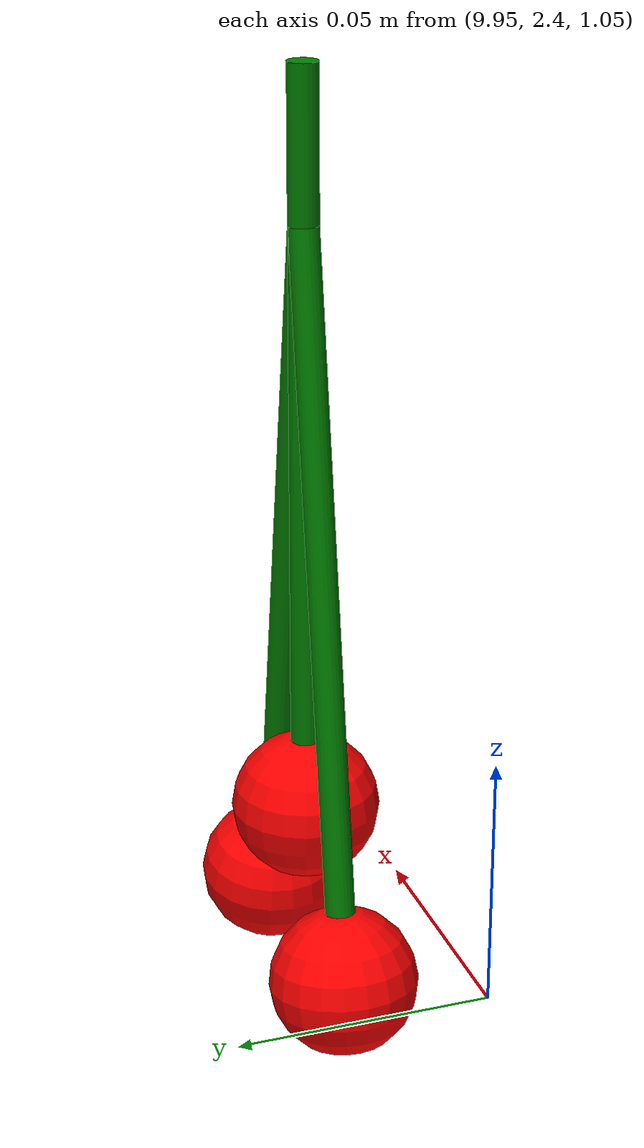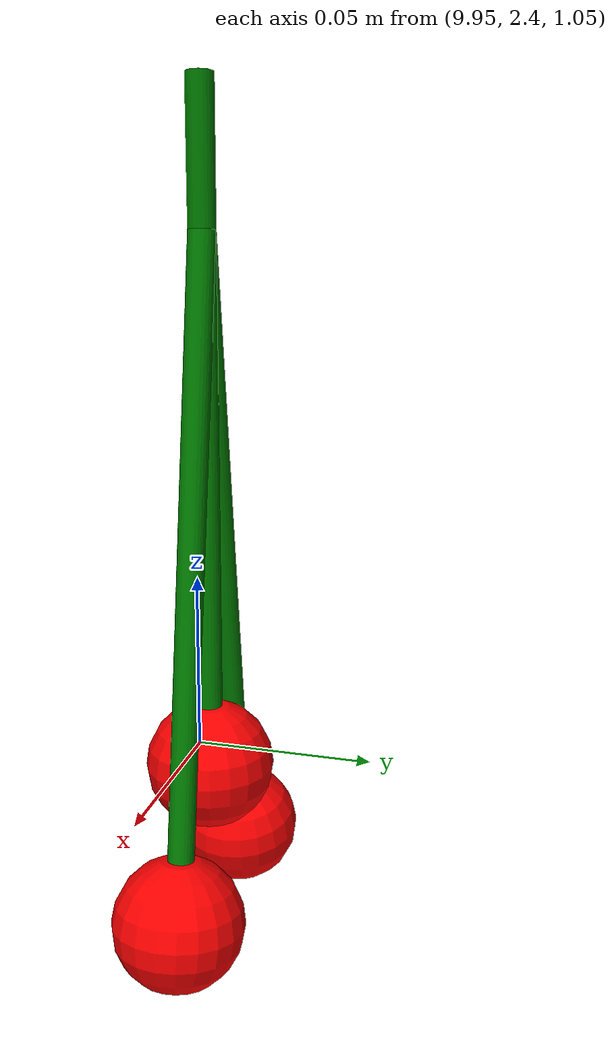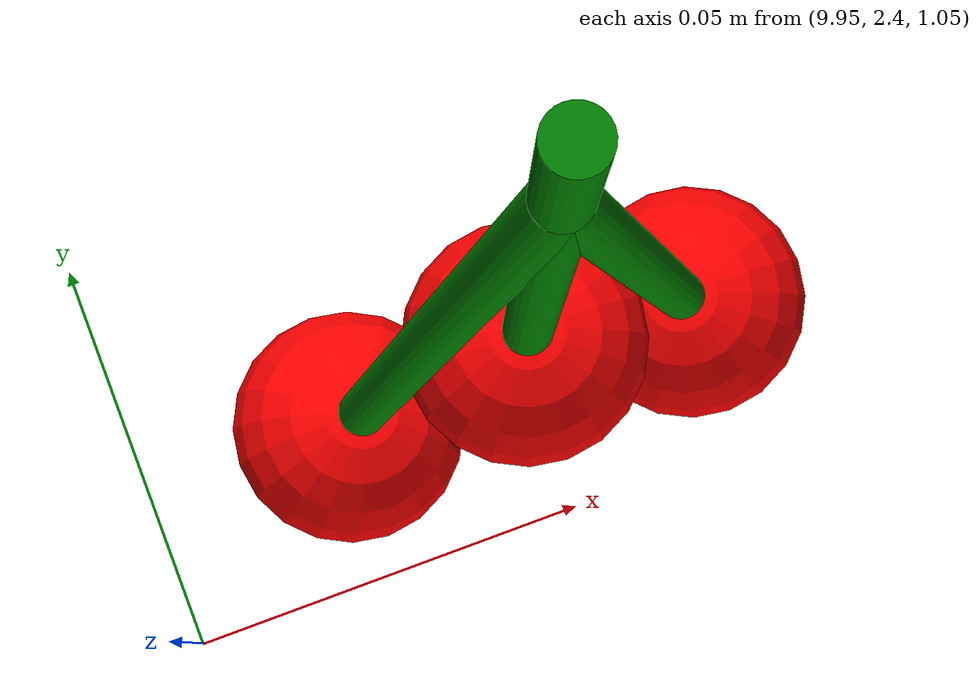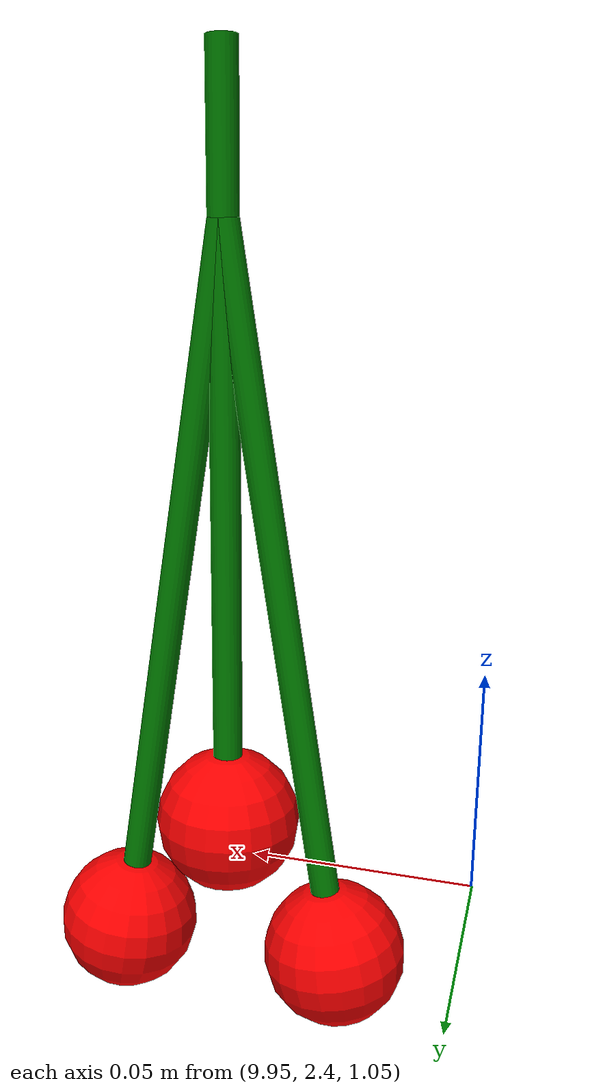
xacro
<?xml version="1.0"?>
<robot xmlns:xacro="http://www.ros.org/wiki/xacro" name="straw_cluster4">

<xacro:arg name="tf_prefix" default=""/>

<link name="world"/>

<!-- Robot1 -->
<link name="$(arg tf_prefix)/yball_stem10">
  <gravity>1</gravity>
  <inertial>
    <origin xyz="0 0 0" rpy="0 0 0"/>
    <mass value=".00001"/>
    <inertia ixx="0.0000004" ixy="0.0" ixz="0.0" iyy="0.0000004" iyz="0.0" izz="0.0000004" />
  </inertial>
  <visual><geometry><sphere radius=".00001"/></geometry></visual>
  <collision><geometry><sphere radius=".00001"/></geometry></collision>
</link>
<gazebo reference="$(arg tf_prefix)/yball_stem10">
  <material>Gazebo/Green</material>
</gazebo>

<joint name="$(arg tf_prefix)/stem10y" type="revolute" >
  <parent link="world" />
  <child link="$(arg tf_prefix)/yball_stem10" />
  <origin xyz="10 2.42 1.22" rpy="0 0 0"/>
  <axis xyz="0 1 0" />
  <dynamics damping="0.0001" friction="0.0002"/>
  <limit
      lower="-${pi}" upper="${pi}"
      effort="1" velocity="0.1" />
</joint>

<link name="$(arg tf_prefix)/xball_stem10">
  <gravity>1</gravity>
  <inertial>
    <origin xyz="0 0 0" rpy="0 0 0"/>
    <mass value=".00001"/>
    <inertia ixx="0.0000004" ixy="0.0" ixz="0.0" iyy="0.0000004" iyz="0.0" izz="0.0000004" />
  </inertial>
  <visual><geometry><sphere radius=".00001"/></geometry></visual>
  <collision><geometry><sphere radius=".00001"/></geometry></collision>
</link>
<gazebo reference="$(arg tf_prefix)/xball_stem10">
  <material>Gazebo/Green</material>
</gazebo>

<joint name="$(arg tf_prefix)/stem10x" type="revolute" >
  <parent link="$(arg tf_prefix)/yball_stem10"/>
  <child link="$(arg tf_prefix)/xball_stem10"/>
  <origin xyz="0 0 0" rpy="0 0 0"/>
  <axis xyz="1 0 0" />
  <dynamics damping="0.0001" friction="0.0002" />
  <limit
      lower="-${pi}" upper="${pi}"
      effort="1" velocity="0.1" />
</joint>

<!-- Define stem of straw10 -->
<link name="$(arg tf_prefix)/stem10">
  <gravity>1</gravity>
  <inertial>
    <origin xyz="0 0 0" rpy="0 0 0"/>
    <mass value="0.001"/>
    <inertia
      ixx="0.0000000005" ixy="0.0" ixz="0.0"
      iyy="0.0000000005" iyz="0.0"
      izz="0.0000000005"/>
  </inertial>
  <collision>
    <geometry>
		<cylinder length="0.15" radius="0.003"/>
    </geometry>
    <material name="green">
      <color rgba="0 ${128/255} 0 1"/>
    </material>
    <origin xyz="0 0 -0.075" rpy="0 0 0"/>
  </collision>
  <visual>
    <geometry>
		<cylinder length="0.15" radius="0.003"/>
    </geometry>
    <material name="green">
      <color rgba="0 ${128/255} 0 1"/>
    </material>
    <origin xyz="0 0 -0.075" rpy="0 0 0"/>
  </visual>
</link>
<gazebo reference="$(arg tf_prefix)/stem10">
  <mu1>100</mu1>
  <mu2>100</mu2>
  <selfCollide>false</selfCollide>
  <maxContacts>2</maxContacts>
  <minDepth>0</minDepth>
  <maxVel>0.01</maxVel>
  <kp  value="100000000" />
  <kd  value="100" />
  <material>Gazebo/Green</material>
</gazebo>

<joint name="$(arg tf_prefix)/xball_stem10" type="fixed">
  <parent link="$(arg tf_prefix)/xball_stem10"/>
  <child link="$(arg tf_prefix)/stem10"/>
  <origin xyz="0 0 0" rpy="0 0 0"/>
</joint>

<!-- Define straw4 -->
<link name="$(arg tf_prefix)/straw10">
  <gravity>1</gravity>
  <inertial>
    <origin xyz="0 0 0" rpy="0 0 0"/>
    <mass value="0.0002"/>
    <inertia
      ixx="0.00000018" ixy="0.0" ixz="0.0"
      iyy="0.00000018" iyz="0.0"
      izz="0.00000018"/>
  </inertial>
  <collision>
    <geometry>
    <sphere radius="0.015"/>
    </geometry>
  </collision>
  <visual>
    <geometry>
		<sphere radius="0.015"/>
    </geometry>
    <material name="Red">
      <color rgba="1 0 0 1"/>
    </material>
  </visual>
</link>
<gazebo reference="$(arg tf_prefix)/straw10">
  <mu1>100</mu1>
  <mu2>100</mu2>
  <maxContacts>2</maxContacts>
  <minDepth>0</minDepth>
  <maxVel>0.01</maxVel>
  <kp  value="100000000" />
  <kd  value="10000" />
  <material>Gazebo/Red</material>
</gazebo>

<joint name="$(arg tf_prefix)/straw10_stem10" type="fixed">
  <parent link="$(arg tf_prefix)/stem10"/>
  <child link="$(arg tf_prefix)/straw10"/>
  <origin xyz="0 0 -0.15" rpy="0 0 0"/>
</joint>

<!-- Robot2 -->
<link name="$(arg tf_prefix)/yball_stem11">
  <gravity>1</gravity>
  <inertial>
    <origin xyz="0 0 0" rpy="0 0 0"/>
    <mass value=".00001"/>
    <inertia ixx="0.0000004" ixy="0.0" ixz="0.0" iyy="0.0000004" iyz="0.0" izz="0.0000004" />
  </inertial>
  <visual><geometry><sphere radius=".00001"/></geometry></visual>
  <collision><geometry><sphere radius=".00001"/></geometry></collision>
</link>
<gazebo reference="$(arg tf_prefix)/yball_stem11">
  <material>Gazebo/Green</material>
</gazebo>

<joint name="$(arg tf_prefix)/stem11y" type="revolute" >
  <parent link="world" />
  <child link="$(arg tf_prefix)/yball_stem11" />
  <origin xyz="10 2.42 1.19" rpy="0 -${pi/20} 0"/> <!-- 0 -${pi/20} 0 -->
  <axis xyz="0 1 0" />
  <dynamics damping="0.01" friction="0.02"/>
  <limit
      lower="-${pi}" upper="${pi}"
      effort="1" velocity="0.1" />
</joint>

<link name="$(arg tf_prefix)/xball_stem11">
  <gravity>1</gravity>
  <inertial>
    <origin xyz="0 0 0" rpy="0 0 0"/>
    <mass value=".00001"/>
    <inertia ixx="0.0000004" ixy="0.0" ixz="0.0" iyy="0.0000004" iyz="0.0" izz="0.0000004" />
  </inertial>
  <visual><geometry><sphere radius=".00001"/></geometry></visual>
  <collision><geometry><sphere radius=".00001"/></geometry></collision>
</link>
<gazebo reference="$(arg tf_prefix)/xball_stem11">
  <material>Gazebo/Green</material>
</gazebo>

<joint name="$(arg tf_prefix)/stem11x" type="revolute" >
  <parent link="$(arg tf_prefix)/yball_stem11"/>
  <child link="$(arg tf_prefix)/xball_stem11"/>
  <origin xyz="0 0 0" rpy="0 0 0"/>
  <axis xyz="1 0 0" />
  <dynamics damping="0.0001" friction="0.0002" />
  <limit
      lower="-${pi}" upper="${pi}"
      effort="1" velocity="0.1" />
</joint>

<!-- Define stem of straw11 -->
<link name="$(arg tf_prefix)/stem11">
  <gravity>1</gravity>
  <inertial>
    <origin xyz="0 0 0" rpy="0 0 0"/>
    <mass value="0.0001"/>
    <inertia
      ixx="0.0000000005" ixy="0.0" ixz="0.0"
      iyy="0.0000000005" iyz="0.0"
      izz="0.0000000005"/>
  </inertial>
  <collision>
    <geometry>
		<cylinder length="0.15" radius="0.003"/>
    </geometry>
    <material name="green">
      <color rgba="0 ${128/255} 0 1"/>
    </material>
    <origin xyz="0 0 -0.075" rpy="0 0 0"/>
  </collision>
  <visual>
    <geometry>
		<cylinder length="0.15" radius="0.003"/>
    </geometry>
    <material name="green">
      <color rgba="0 ${128/255} 0 1"/>
    </material>
    <origin xyz="0 0 -0.075" rpy="0 0 0"/>
  </visual>
</link>
<gazebo reference="$(arg tf_prefix)/stem11">
  <mu1>100</mu1>
  <mu2>100</mu2>
  <maxContacts>2</maxContacts>
  <minDepth>0</minDepth>
  <maxVel>0.01</maxVel>
  <kp  value="100000000" />
  <kd  value="10000" />
  <material>Gazebo/Green</material>
</gazebo>

<joint name="$(arg tf_prefix)/xball_stem11" type="fixed">
  <parent link="$(arg tf_prefix)/xball_stem11"/>
  <child link="$(arg tf_prefix)/stem11"/>
  <origin xyz="0 0 0" rpy="0 0 0"/>
</joint>

<!-- Define straw11 -->
<link name="$(arg tf_prefix)/straw11">
  <gravity>1</gravity>
  <inertial>
    <origin xyz="0 0 0" rpy="0 0 0"/>
    <mass value="0.002"/>
    <inertia
      ixx="0.00000018" ixy="0.0" ixz="0.0"
      iyy="0.00000018" iyz="0.0"
      izz="0.00000018"/>
  </inertial>
  <collision>
    <geometry>
    <sphere radius="0.015"/>
    </geometry>
  </collision>
  <visual>
    <geometry>
		<sphere radius="0.015"/>
    </geometry>
    <material name="Red">
      <color rgba="1 0 0 1"/>
    </material>
  </visual>
</link>
<gazebo reference="$(arg tf_prefix)/straw11">
  <mu1>100</mu1>
  <mu2>100</mu2>
  <maxContacts>2</maxContacts>
  <minDepth>0</minDepth>
  <maxVel>0.01</maxVel>
  <kp  value="100000000" />
  <kd  value="10000" />
  <material>Gazebo/Red</material>
</gazebo>

<joint name="$(arg tf_prefix)/straw11_stem11" type="fixed">
  <parent link="$(arg tf_prefix)/stem11"/>
  <child link="$(arg tf_prefix)/straw11"/>
  <origin xyz="0 0 -0.15" rpy="0 0 0"/>
</joint>

<!-- Robot3 -->
<link name="$(arg tf_prefix)/yball_stem12">
  <gravity>1</gravity>
  <inertial>
    <origin xyz="0 0 0" rpy="0 0 0"/>
    <mass value=".00001"/>
    <inertia ixx="0.0000004" ixy="0.0" ixz="0.0" iyy="0.0000004" iyz="0.0" izz="0.0000004" />
  </inertial>
  <visual><geometry><sphere radius=".00001"/></geometry></visual>
  <collision><geometry><sphere radius=".00001"/></geometry></collision>
</link>
<gazebo reference="$(arg tf_prefix)/yball_stem12">
  <material>Gazebo/Green</material>
</gazebo>

<joint name="$(arg tf_prefix)/stem12y" type="revolute" >
  <parent link="world" />
  <child link="$(arg tf_prefix)/yball_stem12" />
  <origin xyz="10 2.42 1.19" rpy="0 ${pi/20} 0"/> <!-- 0 ${pi/20} 0 -->
  <axis xyz="0 1 0" />
  <dynamics damping="0.01" friction="0.02"/>
  <limit
      lower="-${pi}" upper="${pi}"
      effort="1" velocity="0.1" />
</joint>

<link name="$(arg tf_prefix)/xball_stem12">
  <gravity>1</gravity>
  <inertial>
    <origin xyz="0 0 0" rpy="0 0 0"/>
    <mass value=".00001"/>
    <inertia ixx="0.0000004" ixy="0.0" ixz="0.0" iyy="0.0000004" iyz="0.0" izz="0.0000004" />
  </inertial>
  <visual><geometry><sphere radius=".00001"/></geometry></visual>
  <collision><geometry><sphere radius=".00001"/></geometry></collision>
</link>
<gazebo reference="$(arg tf_prefix)/xball_stem12">
  <material>Gazebo/Green</material>
</gazebo>

<joint name="$(arg tf_prefix)/stem12x" type="revolute" >
  <parent link="$(arg tf_prefix)/yball_stem12"/>
  <child link="$(arg tf_prefix)/xball_stem12"/>
  <origin xyz="0 0 0" rpy="0 0 0"/>
  <axis xyz="1 0 0" />
  <dynamics damping="0.0001" friction="0.0002" />
  <limit
      lower="-${pi}" upper="${pi}"
      effort="1" velocity="0.1" />
</joint>

<!-- Define stem of straw12 -->
<link name="$(arg tf_prefix)/stem12">
  <gravity>1</gravity>
  <inertial>
    <origin xyz="0 0 0" rpy="0 0 0"/>
    <mass value="0.002"/>
    <inertia
      ixx="0.0000000005" ixy="0.0" ixz="0.0"
      iyy="0.0000000005" iyz="0.0"
      izz="0.0000000005"/>
  </inertial>
  <collision>
    <geometry>
		<cylinder length="0.15" radius="0.003"/>
    </geometry>
    <material name="green">
      <color rgba="0 ${128/255} 0 1"/>
    </material>
    <origin xyz="0 0 -0.075" rpy="0 0 0"/>
  </collision>
  <visual>
    <geometry>
		<cylinder length="0.15" radius="0.003"/>
    </geometry>
    <material name="green">
      <color rgba="0 ${128/255} 0 1"/>
    </material>
    <origin xyz="0 0 -0.075" rpy="0 0 0"/>
  </visual>
</link>
<gazebo reference="$(arg tf_prefix)/stem12">
  <mu1>100</mu1>
  <mu2>100</mu2>
  <maxContacts>2</maxContacts>
  <minDepth>0</minDepth>
  <maxVel>0.01</maxVel>
  <kp  value="100000000" />
  <kd  value="10000" />
  <material>Gazebo/Green</material>
</gazebo>

<joint name="$(arg tf_prefix)/xball_stem12" type="fixed">
  <parent link="$(arg tf_prefix)/xball_stem12"/>
  <child link="$(arg tf_prefix)/stem12"/>
  <origin xyz="0 0 0" rpy="0 0 0"/>
</joint>

<!-- Define straw12 -->
<link name="$(arg tf_prefix)/straw12">
  <gravity>1</gravity>
  <inertial>
    <origin xyz="0 0 0" rpy="0 0 0"/>
    <mass value="0.002"/>
    <inertia
      ixx="0.00000018" ixy="0.0" ixz="0.0"
      iyy="0.00000018" iyz="0.0"
      izz="0.00000018"/>
  </inertial>
  <collision>
    <geometry>
    <sphere radius="0.015"/>
    </geometry>
  </collision>
  <visual>
    <geometry>
		<sphere radius="0.015"/>
    </geometry>
    <material name="Red">
      <color rgba="1 0 0 1"/>
    </material>
  </visual>
</link>
<gazebo reference="$(arg tf_prefix)/straw12">
  <mu1>100</mu1>
  <mu2>100</mu2>
  <maxContacts>2</maxContacts>
  <minDepth>0</minDepth>
  <maxVel>0.01</maxVel>
  <kp  value="100000000" />
  <kd  value="10000" />
  <material>Gazebo/Red</material>
</gazebo>

<joint name="$(arg tf_prefix)/straw12_stem12" type="fixed">
  <parent link="$(arg tf_prefix)/stem12"/>
  <child link="$(arg tf_prefix)/straw12"/>
  <origin xyz="0 0 -0.15" rpy="0 0 0"/>
</joint>

<gazebo>
  <plugin name="gazebo_ros_control" filename="libgazebo_ros_control.so">
    <robotSimType>gazebo_ros_control/DefaultRobotHWSim</robotSimType>
    <legacyModeNS>true</legacyModeNS>
    <robotNamespace>/straw_cluster4</robotNamespace>
  </plugin>
</gazebo>

</robot>
